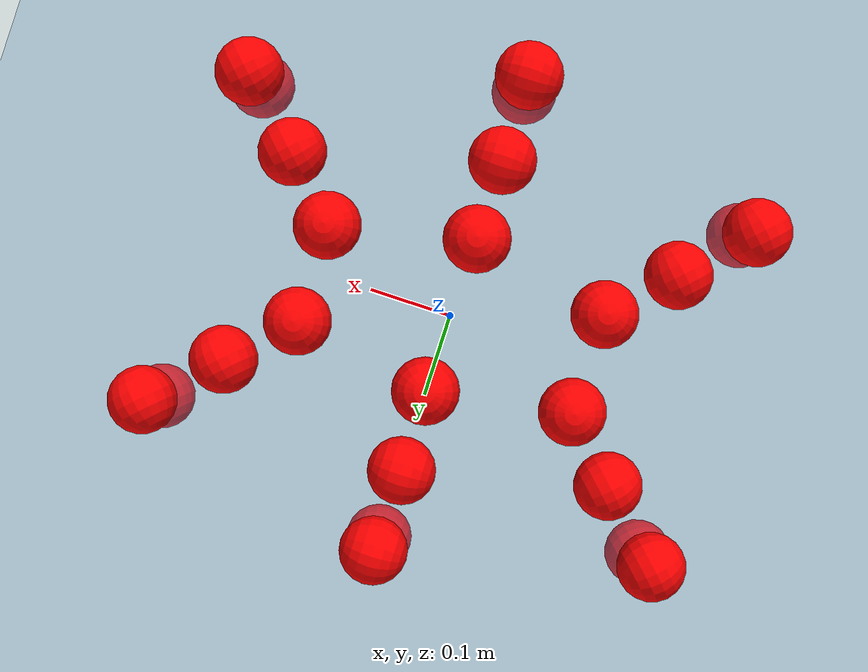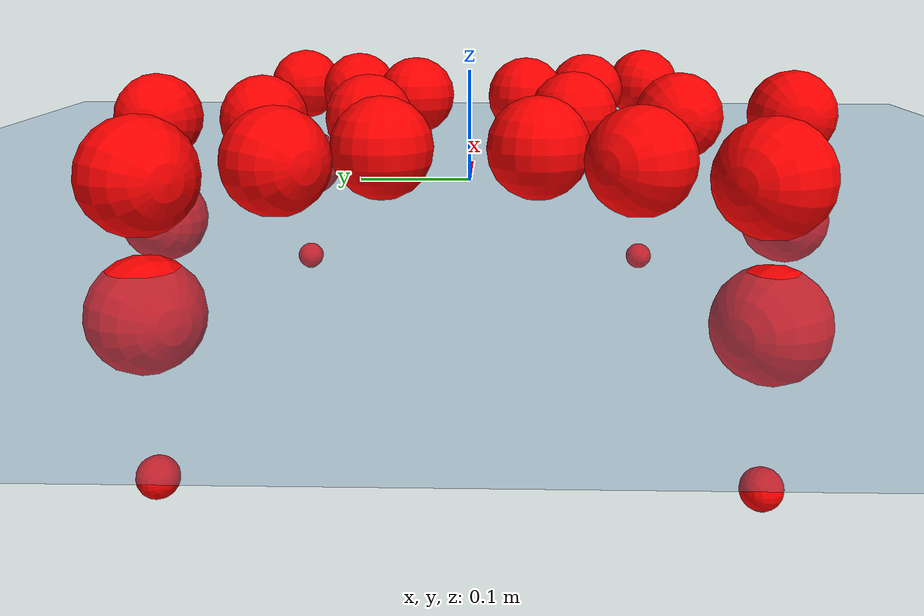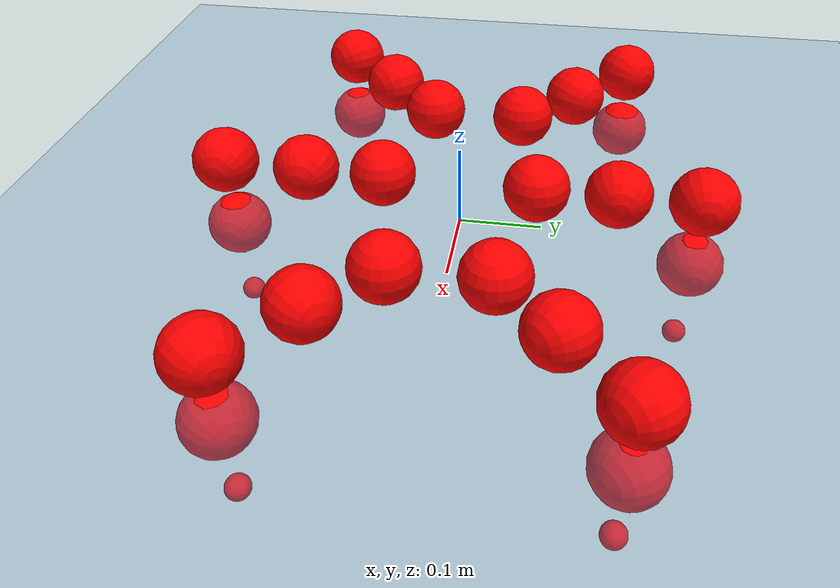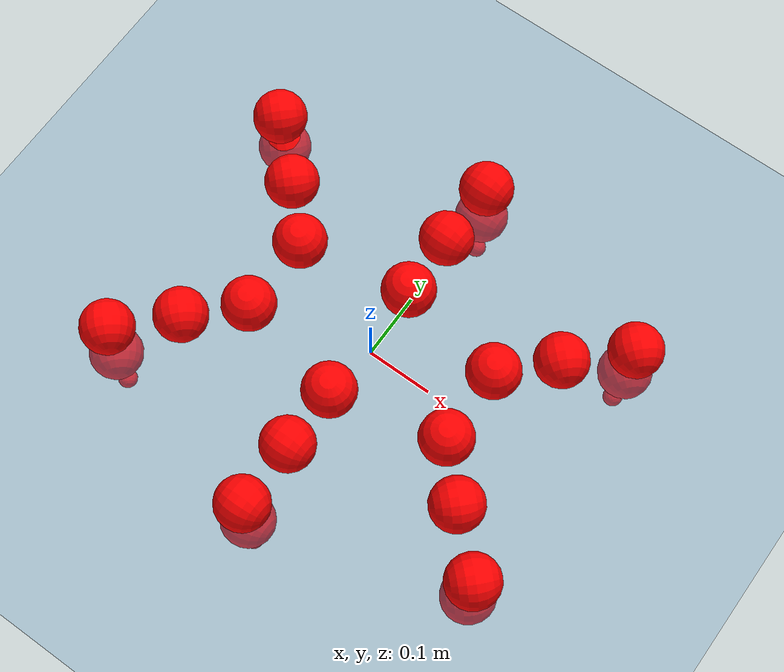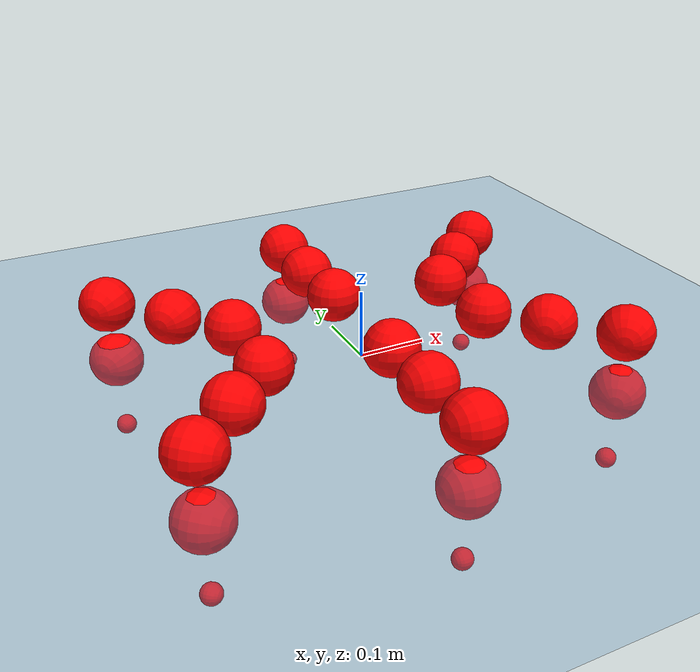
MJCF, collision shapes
<mujoco model="Golem">
  <compiler angle="radian" assetdir="assets" balanceinertia="true" inertiafromgeom="false"/>

  <option timestep="0.005" density="1.2" viscosity="2e-05"/>

  <size nkey="1"/>

  <visual>
    <quality shadowsize="8192"/>
    <map shadowclip="0.5"/>
  </visual>

  <default>
    <default class="/">
      <joint armature="0.01" damping="0.01" frictionloss="0.01"/>
      <geom contype="0" conaffinity="0" group="1" solref="-1000 -80"/>
      <site size="0.01 0.005 0.005" group="5"/>
      <general forcelimited="true" biastype="affine" gainprm="25" biasprm="0 -25 -0.5"/>
      <default class="visual">
        <geom type="mesh" group="2"/>
      </default>
      <default class="collision">
        <geom group="3"/>
      </default>
      <default class="foot">
        <geom size="0.01 0 0" condim="6" group="4" priority="1" solimp="0.015 1 0.01"/>
      </default>
      <default class="reward_collision_sphere">
        <geom group="5" rgba="1 0 0 1"/>
      </default>
    </default>
  </default>

  <asset>
    <texture type="skybox" colorspace="auto" name="//unnamed_texture_0" builtin="gradient" rgb1="0.95 0.95 0.95" rgb2="0.95 0.95 0.95" width="100" height="600"/>
    <texture type="2d" colorspace="auto" name="texplane" builtin="checker" rgb1="0.345 0.575 0.748" rgb2="0.345 0.575 0.748" markrgb="1 1 1" width="512" height="512"/>
    <material name="MatPlane" class="/" texture="texplane" texuniform="true" texrepeat="2 2" specular="0.9"/>
    <mesh name="body" class="/" file="body.stl" scale="0.001 0.001 0.001"/>
    <mesh name="coxa" class="/" file="coxa.stl" scale="0.001 0.001 0.001"/>
    <mesh name="femur" class="/" file="femur.stl" scale="0.001 0.001 0.001"/>
    <mesh name="tibia" class="/" file="tibia.stl" scale="0.001 0.001 0.001"/>
    <mesh name="tarsus" class="/" file="tarsus.stl" scale="0.001 0.001 0.001"/>
  </asset>

  <worldbody>
    <geom name="floor" class="/" size="100 100 0.125" type="plane" group="0" material="MatPlane"/>
    <light name="toplight_shadow" class="/" pos="0 0 5" dir="0.0990148 0.0990148 -0.990148" type="directional" ambient="0.04 0.04 0.04" diffuse="0.55 0.55 0.55" specular="0.12 0.12 0.12"/>
    <light name="toplight_fill" class="/" pos="0 0 5" dir="0.0990148 0.0990148 -0.990148" type="directional" castshadow="false" ambient="0.04 0.04 0.04" diffuse="0.3 0.3 0.3" specular="0.08 0.08 0.08"/>
    <body name="trunk" pos="-0.00149545 0.0017391 -0.00238485" quat="0.999999 -0.000739517 0.000883317 0.000326545">
      <inertial pos="0.0010844 0.00213693 -0.00662184" quat="0.999931 0.00670576 -0.00834773 0.00489914" mass="3.463" diaginertia="0.0135317 0.00749535 0.00844197"/>
      <joint name="//unnamed_joint_0" type="free"/>
      <geom name="//unnamed_geom_1" class="/" pos="0 0 0.0620001" quat="1 0 0 0" type="mesh" rgba="0.9 0.9 0.9 1" mesh="body"/>
      <site name="imu" class="/" pos="0.140242 0.00690369 0.102115" size="0.00995613"/>
      <camera name="track" class="/" pos="0 -1.8936 0" quat="0.707107 0.707107 0 0" mode="trackcom"/>
      <camera name="ego_camera" class="/" pos="0.139267 0 0.0968752" quat="-0.5 -0.5 0.5 0.5"/>
      <body name="coxa_RR" pos="-0.190157 -0.0810395 0.0589358" quat="0.38247 -6.22933e-05 0.00015156 -0.923968">
        <inertial pos="1.92342e-05 -0.00210726 0.000500625" quat="0.999993 -0.00190838 -0.00282585 -0.00156041" mass="0.19021" diaginertia="0.0137853 0.00716822 0.00857418"/>
        <joint name="coxa_joint_RR" class="/" pos="0 0 0" axis="0.0118523 -0.0081584 -0.999896" range="-3.17384 3.13529" armature="0.010828" damping="0" frictionloss="0.0100723"/>
        <geom name="//unnamed_geom_2" class="/" type="mesh" rgba="0.2 0.2 0.2 1" mesh="coxa"/>
        <geom name="//unnamed_geom_3" class="reward_collision_sphere" size="0.0398245" pos="-0.0321386 0 0"/>
        <body name="femur_RR" pos="0.0636871 0.0018135 0.00119526" quat="0.500346 -0.500552 0.499529 0.499572">
          <inertial pos="0.00245161 -0.00102482 -0.00209055" quat="0.999991 -0.00077866 0.00384205 -0.00188109" mass="0.192935" diaginertia="0.0139211 0.00752953 0.00880092"/>
          <joint name="femur_joint_RR" class="/" pos="0 0 0" axis="0.00182226 -0.000515756 -0.999998" range="-3.14334 3.19285" armature="0.00987078" damping="0" frictionloss="0.0112743"/>
          <geom name="//unnamed_geom_4" class="/" type="mesh" rgba="0.9 0.9 0.9 1" mesh="femur"/>
          <geom name="//unnamed_geom_5" class="reward_collision_sphere" size="0.0398245"/>
          <body name="tibia_RR" pos="-0.00122134 -0.102941 0.00264991" quat="-3.41365e-05 1 -5.73491e-05 8.66944e-05">
            <inertial pos="0.000105122 0.00155711 -0.000325262" quat="0.999966 -0.00564144 -0.00597146 1.35996e-05" mass="0.19762" diaginertia="0.0142466 0.00776185 0.00885398"/>
            <joint name="tibia_joint_RR" class="/" pos="0 0 0" axis="0.006313 0.00621783 0.999961" range="-3.10667 3.09084" armature="0.0105206" damping="0.0190657" frictionloss="0.00859513"/>
            <geom name="//unnamed_geom_6" class="/" type="mesh" rgba="0.2 0.2 0.2 1" mesh="tibia"/>
            <geom name="//unnamed_geom_7" class="reward_collision_sphere" size="0.0398245"/>
            <body name="tarsus_RR" pos="0.0965057 0.00200488 -0.00234647" quat="0.999999 -0.00101869 -0.000239049 0.000307932">
              <inertial pos="0.0636516 0.00119778 -0.00158656" quat="0.498046 0.501043 0.501563 0.49934" mass="0.193703" diaginertia="0.0134005 0.00758098 0.00835532"/>
              <joint name="tarsus_joint_RR" class="/" pos="0 0 0" axis="3.68721e-05 -0.00145395 0.999999" range="-3.1726 3.10655" armature="0.00857421" damping="0.00850378" frictionloss="0.0103135"/>
              <geom name="//unnamed_geom_8" class="/" type="mesh" rgba="0.9 0.9 0.9 1" mesh="tarsus"/>
              <geom name="foot_1" class="foot" size="0.0108606" pos="0.119984 0 0" quat="0 -0.707107 0 0.707107"/>
              <geom name="//unnamed_geom_10" class="reward_collision_sphere" size="0.0398245"/>
              <geom name="//unnamed_geom_11" class="reward_collision_sphere" size="0.0149342" pos="0.115163 0 0"/>
              <site name="foot_1" class="foot" pos="0.119984 0 0" quat="0 -0.707107 0 0.707107" size="0.00995613"/>
            </body>
          </body>
        </body>
      </body>
      <body name="coxa_RM" pos="-0.000426131 -0.127478 0.062133" quat="0.707934 -0.000719561 -0.000220353 -0.706278">
        <inertial pos="0.00151907 -0.000915401 5.85001e-05" quat="1 0.000305512 0.000280609 0.000101382" mass="0.189992" diaginertia="0.0140462 0.00760181 0.00849307"/>
        <joint name="coxa_joint_RM" class="/" pos="0 0 0" axis="-0.00611395 0.00326324 -0.999976" range="-3.13876 3.15124" armature="0.0105772" damping="0.00157808" frictionloss="0.0113168"/>
        <geom name="//unnamed_geom_12" class="/" type="mesh" rgba="0.2 0.2 0.2 1" mesh="coxa"/>
        <geom name="//unnamed_geom_13" class="reward_collision_sphere" size="0.0398245" pos="-0.0321386 0 0"/>
        <body name="femur_RM" pos="0.0629184 -2.97205e-05 -0.000910678" quat="0.50035 -0.49993 0.499502 0.500217">
          <inertial pos="-0.00146783 -0.00218543 -0.000885769" quat="0.999908 -0.0110718 0.00724049 0.00305467" mass="0.199994" diaginertia="0.0143441 0.00768265 0.00876549"/>
          <joint name="femur_joint_RM" class="/" pos="0 0 0" axis="0.000424084 -0.00587929 -0.999983" stiffness="0.00620416" range="-3.13552 3.1562" armature="0.0111906" damping="0.0171526" frictionloss="0.00879367"/>
          <geom name="//unnamed_geom_14" class="/" type="mesh" rgba="0.9 0.9 0.9 1" mesh="femur"/>
          <geom name="//unnamed_geom_15" class="reward_collision_sphere" size="0.0398245"/>
          <body name="tibia_RM" pos="-0.00188287 -0.1017 0.000530145" quat="0.000726364 0.999999 0.000418076 0.00056895">
            <inertial pos="-0.00194015 -0.00252054 0.000203566" quat="0.999946 -0.00869076 0.00561701 -0.000112563" mass="0.19665" diaginertia="0.0137396 0.00733922 0.00834172"/>
            <joint name="tibia_joint_RM" class="/" pos="0 0 0" axis="0.00241361 -0.00528203 0.999983" range="-3.1529 3.17632" armature="0.0086309" damping="0" frictionloss="0.010166"/>
            <geom name="//unnamed_geom_16" class="/" type="mesh" rgba="0.2 0.2 0.2 1" mesh="tibia"/>
            <geom name="//unnamed_geom_17" class="reward_collision_sphere" size="0.0398245"/>
            <body name="tarsus_RM" pos="0.096589 -0.00147058 5.9674e-05" quat="1 0.000127155 -0.000272327 -0.00018675">
              <inertial pos="0.0641576 0.000177502 0.0029371" quat="0.500239 0.501989 0.497402 0.500359" mass="0.19093" diaginertia="0.0140803 0.00745407 0.00827632"/>
              <joint name="tarsus_joint_RM" class="/" pos="0 0 0" axis="0.0111069 -0.0057032 0.999922" range="-3.15723 3.13173" armature="0.0102857" damping="0.00681918" frictionloss="0.00952165"/>
              <geom name="//unnamed_geom_18" class="/" type="mesh" rgba="0.9 0.9 0.9 1" mesh="tarsus"/>
              <geom name="foot_2" class="foot" size="0.0106584" pos="0.119984 0 0" quat="0 -0.707107 0 0.707107"/>
              <geom name="//unnamed_geom_20" class="reward_collision_sphere" size="0.0398245"/>
              <geom name="//unnamed_geom_21" class="reward_collision_sphere" size="0.0149342" pos="0.115163 0 0"/>
              <site name="foot_2" class="foot" pos="0.119984 0 0" quat="0 -0.707107 0 0.707107" size="0.00995613"/>
            </body>
          </body>
        </body>
      </body>
      <body name="coxa_RF" pos="0.191196 -0.0796172 0.0617476" quat="0.923704 -0.00104576 -0.00101314 -0.383103">
        <inertial pos="-0.00210808 0.000982837 0.000894115" quat="0.999991 -0.000247718 -0.00417555 0.00055784" mass="0.192732" diaginertia="0.0133976 0.00750049 0.00840181"/>
        <joint name="coxa_joint_RF" class="/" pos="0 0 0" axis="3.21853e-05 1.03442e-06 -1" range="-3.16539 3.18665" armature="0.00985284" damping="0.000803931" frictionloss="0.0103925"/>
        <geom name="//unnamed_geom_22" class="/" type="mesh" rgba="0.2 0.2 0.2 1" mesh="coxa"/>
        <geom name="//unnamed_geom_23" class="reward_collision_sphere" size="0.0398245" pos="-0.0321386 0 0"/>
        <body name="femur_RF" pos="0.0615282 -0.00254096 -0.00123592" quat="0.499985 -0.499992 0.499966 0.500057">
          <inertial pos="-0.00117468 -0.000991445 -0.000464662" quat="0.999916 0.00942288 -0.00786896 -0.00408116" mass="0.194816" diaginertia="0.0133522 0.00735552 0.00806546"/>
          <joint name="femur_joint_RF" class="/" pos="0 0 0" axis="0.00216796 -0.00233233 -0.999995" stiffness="0.00524809" range="-3.1423 3.08811" armature="0.0102446" damping="0" frictionloss="0.00869045"/>
          <geom name="//unnamed_geom_24" class="/" type="mesh" rgba="0.9 0.9 0.9 1" mesh="femur"/>
          <geom name="//unnamed_geom_25" class="reward_collision_sphere" size="0.0398245"/>
          <body name="tibia_RF" pos="0.000873303 -0.104916 0.00235068" quat="-1.04465e-05 1 0.000388073 0.000250455">
            <inertial pos="8.40395e-05 0.000247896 0.00210325" quat="1 -0.00015816 0.000324122 -0.000335413" mass="0.191822" diaginertia="0.0132395 0.00742225 0.0083203"/>
            <joint name="tibia_joint_RF" class="/" pos="0 0 0" axis="-0.0113557 0.00151635 0.999934" range="-3.12422 3.18474" armature="0.00961008" damping="0.00587727" frictionloss="0.0110717"/>
            <geom name="//unnamed_geom_26" class="/" type="mesh" rgba="0.2 0.2 0.2 1" mesh="tibia"/>
            <geom name="//unnamed_geom_27" class="reward_collision_sphere" size="0.0398245"/>
            <body name="tarsus_RF" pos="0.0940571 0.000798829 0.000942976" quat="1 -0.000353468 0.000171413 -0.000263564">
              <inertial pos="0.061999 0.00206242 0.00243191" quat="0.499893 0.496798 0.502441 0.500851" mass="0.203789" diaginertia="0.0139962 0.00785606 0.00894907"/>
              <joint name="tarsus_joint_RF" class="/" pos="0 0 0" axis="-0.00151777 0.0106041 0.999943" stiffness="0.0283671" range="-3.12599 3.13261" armature="0.0110053" damping="0.0160657" frictionloss="0.0108474"/>
              <geom name="//unnamed_geom_28" class="/" type="mesh" rgba="0.9 0.9 0.9 1" mesh="tarsus"/>
              <geom name="foot_3" class="foot" size="0.0102436" pos="0.119984 0 0" quat="0 -0.707107 0 0.707107"/>
              <geom name="//unnamed_geom_30" class="reward_collision_sphere" size="0.0398245"/>
              <geom name="//unnamed_geom_31" class="reward_collision_sphere" size="0.0149342" pos="0.115163 0 0"/>
              <site name="foot_3" class="foot" pos="0.119984 0 0" quat="0 -0.707107 0 0.707107" size="0.00995613"/>
            </body>
          </body>
        </body>
      </body>
      <body name="coxa_LR" pos="-0.189576 0.0831532 0.0585738" quat="0.382679 0.00017337 0.00092078 0.923881">
        <inertial pos="-0.00119872 -0.00087933 0.0012965" quat="0.999989 0.0013585 0.00163535 0.00429854" mass="0.198336" diaginertia="0.0134799 0.00738009 0.0086396"/>
        <joint name="coxa_joint_LR" class="/" pos="0 0 0" axis="-0.00787243 0.00229382 -0.999966" stiffness="0.0100849" range="-3.18356 3.1913" armature="0.0112579" damping="0" frictionloss="0.00980103"/>
        <geom name="//unnamed_geom_32" class="/" type="mesh" rgba="0.2 0.2 0.2 1" mesh="coxa"/>
        <geom name="//unnamed_geom_33" class="reward_collision_sphere" size="0.0398245" pos="-0.0321386 0 0"/>
        <body name="femur_LR" pos="0.0620157 -0.00210498 0.000601362" quat="0.499565 -0.498936 0.500546 0.50095">
          <inertial pos="0.000615494 0.00275001 0.00116729" quat="0.999999 0.000853952 -0.000115938 0.000576992" mass="0.198608" diaginertia="0.0142904 0.00770746 0.00869427"/>
          <joint name="femur_joint_LR" class="/" pos="0 0 0" axis="0.0012271 -0.000237301 0.999999" range="-3.1501 3.13691" armature="0.0095821" damping="0.0286127" frictionloss="0.0100714"/>
          <geom name="//unnamed_geom_34" class="/" type="mesh" rgba="0.9 0.9 0.9 1" mesh="femur"/>
          <geom name="//unnamed_geom_35" class="reward_collision_sphere" size="0.0398245"/>
          <body name="tibia_LR" pos="-0.00383008 -0.104861 0.00209732" quat="-0.0010735 0.999999 0.000416424 0.000144614">
            <inertial pos="0.00228555 -0.000791063 -0.00174977" quat="1 0.000187538 0.000461023 0.000229198" mass="0.205594" diaginertia="0.0143999 0.00761351 0.00875026"/>
            <joint name="tibia_joint_LR" class="/" pos="0 0 0" axis="-0.0159278 -0.000784186 -0.999873" stiffness="0.00400578" range="-3.09406 3.12531" armature="0.0113214" damping="0" frictionloss="0.009849"/>
            <geom name="//unnamed_geom_36" class="/" type="mesh" rgba="0.2 0.2 0.2 1" mesh="tibia"/>
            <geom name="//unnamed_geom_37" class="reward_collision_sphere" size="0.0398245"/>
            <body name="tarsus_LR" pos="0.0926231 -0.000122334 0.00246235" quat="1 6.12997e-05 0.000588581 0.000189888">
              <inertial pos="0.060124 0.00160812 0.000606433" quat="0.494127 0.509424 0.503318 0.492947" mass="0.193732" diaginertia="0.0144528 0.00731263 0.00849939"/>
              <joint name="tarsus_joint_LR" class="/" pos="0 0 0" axis="2.06009e-05 0.00353566 -0.999994" stiffness="0.00172298" range="-3.19402 3.09648" armature="0.00927957" damping="0.0100593" frictionloss="0.00892273"/>
              <geom name="//unnamed_geom_38" class="/" type="mesh" rgba="0.9 0.9 0.9 1" mesh="tarsus"/>
              <geom name="foot_4" class="foot" size="0.00904016" pos="0.119984 0 0" quat="0.707107 0 -0.707107 0"/>
              <geom name="//unnamed_geom_40" class="reward_collision_sphere" size="0.0398245"/>
              <geom name="//unnamed_geom_41" class="reward_collision_sphere" size="0.0149342" pos="0.115163 0 0"/>
              <site name="foot_4" class="foot" pos="0.119984 0 0" quat="0.707107 0 -0.707107 0" size="0.00995613"/>
            </body>
          </body>
        </body>
      </body>
      <body name="coxa_LM" pos="0.00176484 0.121855 0.0594876" quat="0.707086 8.53128e-05 9.34975e-05 0.707128">
        <inertial pos="-0.00227573 -0.00129098 0.00296068" quat="1 -2.36523e-05 0.000629961 0.000701782" mass="0.191334" diaginertia="0.0142247 0.0073886 0.00833649"/>
        <joint name="coxa_joint_LM" class="/" pos="0 0 0" axis="0.000846236 0.0118645 -0.999929" range="-3.15731 3.18401" armature="0.0112108" damping="0.00408874" frictionloss="0.0109512"/>
        <geom name="//unnamed_geom_42" class="/" type="mesh" rgba="0.2 0.2 0.2 1" mesh="coxa"/>
        <geom name="//unnamed_geom_43" class="reward_collision_sphere" size="0.0398245" pos="-0.0321386 0 0"/>
        <body name="femur_LM" pos="0.0635733 0.0020483 -0.000522513" quat="0.500149 -0.500076 0.499804 0.49997">
          <inertial pos="0.0013446 -0.00167505 -0.00254065" quat="0.999988 -0.00487413 -0.000538909 0.000291286" mass="0.206294" diaginertia="0.0143865 0.00754539 0.0083433"/>
          <joint name="femur_joint_LM" class="/" pos="0 0 0" axis="9.90144e-07 0.000543133 1" stiffness="0.00685757" range="-3.08818 3.14425" armature="0.00921119" damping="0.0153883" frictionloss="0.00921591"/>
          <geom name="//unnamed_geom_44" class="/" type="mesh" rgba="0.9 0.9 0.9 1" mesh="femur"/>
          <geom name="//unnamed_geom_45" class="reward_collision_sphere" size="0.0398245"/>
          <body name="tibia_LM" pos="-0.00110553 -0.0971546 -0.00237829" quat="-0.000161427 1 2.37561e-05 4.96491e-06">
            <inertial pos="0.00194255 -0.00102194 4.44464e-06" quat="0.999997 0.0020299 0.00122081 0.00105917" mass="0.194687" diaginertia="0.0139658 0.00729392 0.00812015"/>
            <joint name="tibia_joint_LM" class="/" pos="0 0 0" axis="0.00678165 0.010396 -0.999923" stiffness="0.00975991" range="-3.13122 3.14241" armature="0.0102024" damping="0.0104487" frictionloss="0.00967994"/>
            <geom name="//unnamed_geom_46" class="/" type="mesh" rgba="0.2 0.2 0.2 1" mesh="tibia"/>
            <geom name="//unnamed_geom_47" class="reward_collision_sphere" size="0.0398245"/>
            <body name="tarsus_LM" pos="0.0944998 0.000340791 -0.0011422" quat="1 3.23222e-05 6.66095e-05 1.98887e-05">
              <inertial pos="0.0652976 -0.000243179 0.00237449" quat="0.500241 0.502044 0.497702 0.500003" mass="0.19545" diaginertia="0.013597 0.00729574 0.00845271"/>
              <joint name="tarsus_joint_LM" class="/" pos="0 0 0" axis="-0.00614685 0.0085118 -0.999945" range="-3.13021 3.13519" armature="0.00988964" damping="0.0112026" frictionloss="0.00972787"/>
              <geom name="//unnamed_geom_48" class="/" type="mesh" rgba="0.9 0.9 0.9 1" mesh="tarsus"/>
              <geom name="foot_5" class="foot" size="0.010021" pos="0.119984 0 0" quat="0.707107 0 -0.707107 0"/>
              <geom name="//unnamed_geom_50" class="reward_collision_sphere" size="0.0398245"/>
              <geom name="//unnamed_geom_51" class="reward_collision_sphere" size="0.0149342" pos="0.115163 0 0"/>
              <site name="foot_5" class="foot" pos="0.119984 0 0" quat="0.707107 0 -0.707107 0" size="0.00995613"/>
            </body>
          </body>
        </body>
      </body>
      <body name="coxa_LF" pos="0.189612 0.0814128 0.0620904" quat="0.923925 -5.26087e-05 -0.00100345 0.382573">
        <inertial pos="-0.000772915 0.000422449 2.62833e-05" quat="0.999986 -0.000381488 0.000234089 -0.00536215" mass="0.194084" diaginertia="0.0143158 0.00759056 0.00840872"/>
        <joint name="coxa_joint_LF" class="/" pos="0 0 0" axis="-0.000809328 -0.00292201 -0.999995" stiffness="0.00299043" range="-3.16994 3.13412" armature="0.009645" damping="0.00355824" frictionloss="0.00867805"/>
        <geom name="//unnamed_geom_52" class="/" type="mesh" rgba="0.2 0.2 0.2 1" mesh="coxa"/>
        <geom name="//unnamed_geom_53" class="reward_collision_sphere" size="0.0398245" pos="-0.0321386 0 0"/>
        <body name="femur_LF" pos="0.063515 0.000768282 -0.000469462" quat="0.500385 -0.499365 0.500149 0.5001">
          <inertial pos="0.00225623 0.00125626 -0.00267795" quat="1 -9.21396e-05 0.000242331 0.000293349" mass="0.189761" diaginertia="0.0138879 0.0076412 0.00842531"/>
          <joint name="femur_joint_LF" class="/" pos="0 0 0" axis="0.000487396 0.00113958 0.999999" stiffness="0.0069048" range="-3.15234 3.14498" armature="0.0109681" damping="0.0185419" frictionloss="0.0111111"/>
          <geom name="//unnamed_geom_54" class="/" type="mesh" rgba="0.9 0.9 0.9 1" mesh="femur"/>
          <geom name="//unnamed_geom_55" class="reward_collision_sphere" size="0.0398245"/>
          <body name="tibia_LF" pos="0.00189501 -0.104818 -0.00111949" quat="-0.000412303 0.999999 -0.000397807 0.000831614">
            <inertial pos="-0.00251627 0.00229374 -0.000542519" quat="0.999999 -0.00111083 0.000467681 0.000147093" mass="0.211234" diaginertia="0.0149237 0.00788656 0.00912835"/>
            <joint name="tibia_joint_LF" class="/" pos="0 0 0" axis="9.02446e-05 0.000206116 -1" range="-3.1217 3.15733" armature="0.010765" damping="0" frictionloss="0.009503"/>
            <geom name="//unnamed_geom_56" class="/" type="mesh" rgba="0.2 0.2 0.2 1" mesh="tibia"/>
            <geom name="//unnamed_geom_57" class="reward_collision_sphere" size="0.0398245"/>
            <body name="tarsus_LF" pos="0.0945084 -0.000597285 -0.00177544" quat="1 -2.37183e-05 0.000396542 -0.000685748">
              <inertial pos="0.0663688 0.00250355 -0.00162864" quat="0.495699 0.507594 0.498415 0.498211" mass="0.200677" diaginertia="0.0150011 0.00776548 0.00906466"/>
              <joint name="tarsus_joint_LF" class="/" pos="0 0 0" axis="0.00122421 0.0147479 -0.99989" stiffness="0.000243328" range="-3.09988 3.1309" armature="0.0103649" damping="0.0175547" frictionloss="0.0109044"/>
              <geom name="//unnamed_geom_58" class="/" type="mesh" rgba="0.9 0.9 0.9 1" mesh="tarsus"/>
              <geom name="foot_6" class="foot" size="0.0109726" pos="0.119984 0 0" quat="0.707107 0 -0.707107 0"/>
              <geom name="//unnamed_geom_60" class="reward_collision_sphere" size="0.0398245"/>
              <geom name="//unnamed_geom_61" class="reward_collision_sphere" size="0.0149342" pos="0.115163 0 0"/>
              <site name="foot_6" class="foot" pos="0.119984 0 0" quat="0.707107 0 -0.707107 0" size="0.00995613"/>
            </body>
          </body>
        </body>
      </body>
    </body>
  </worldbody>

  <contact>
    <pair class="/" geom1="floor" geom2="foot_1" name="//unnamed_contact_0"/>
    <pair class="/" geom1="floor" geom2="foot_2" name="//unnamed_contact_1"/>
    <pair class="/" geom1="floor" geom2="foot_3" name="//unnamed_contact_2"/>
    <pair class="/" geom1="floor" geom2="foot_4" name="//unnamed_contact_3"/>
    <pair class="/" geom1="floor" geom2="foot_5" name="//unnamed_contact_4"/>
    <pair class="/" geom1="floor" geom2="foot_6" name="//unnamed_contact_5"/>
  </contact>

  <actuator>
    <general name="coxa_joint_RR" class="/" joint="coxa_joint_RR" forcerange="-6.52658 6.52658" gainprm="24.3469" biasprm="0 -24.3469 -0.468542"/>
    <general name="femur_joint_RR" class="/" joint="femur_joint_RR" forcerange="-7.14995 7.14995" gainprm="24.3469" biasprm="0 -24.3469 -0.468542"/>
    <general name="tibia_joint_RR" class="/" joint="tibia_joint_RR" forcerange="-6.56481 6.56481" gainprm="24.3469" biasprm="0 -24.3469 -0.468542"/>
    <general name="tarsus_joint_RR" class="/" joint="tarsus_joint_RR" forcerange="-7.20215 7.20215" gainprm="24.3469" biasprm="0 -24.3469 -0.468542"/>
    <general name="coxa_joint_RM" class="/" joint="coxa_joint_RM" forcerange="-7.42427 7.42427" gainprm="24.3469" biasprm="0 -24.3469 -0.468542"/>
    <general name="femur_joint_RM" class="/" joint="femur_joint_RM" forcerange="-7.30349 7.30349" gainprm="24.3469" biasprm="0 -24.3469 -0.468542"/>
    <general name="tibia_joint_RM" class="/" joint="tibia_joint_RM" forcerange="-7.09888 7.09888" gainprm="24.3469" biasprm="0 -24.3469 -0.468542"/>
    <general name="tarsus_joint_RM" class="/" joint="tarsus_joint_RM" forcerange="-6.84684 6.84684" gainprm="24.3469" biasprm="0 -24.3469 -0.468542"/>
    <general name="coxa_joint_RF" class="/" joint="coxa_joint_RF" forcerange="-7.90615 7.90615" gainprm="24.3469" biasprm="0 -24.3469 -0.468542"/>
    <general name="femur_joint_RF" class="/" joint="femur_joint_RF" forcerange="-7.56475 7.56475" gainprm="24.3469" biasprm="0 -24.3469 -0.468542"/>
    <general name="tibia_joint_RF" class="/" joint="tibia_joint_RF" forcerange="-7.756 7.756" gainprm="24.3469" biasprm="0 -24.3469 -0.468542"/>
    <general name="tarsus_joint_RF" class="/" joint="tarsus_joint_RF" forcerange="-6.86631 6.86631" gainprm="24.3469" biasprm="0 -24.3469 -0.468542"/>
    <general name="coxa_joint_LR" class="/" joint="coxa_joint_LR" forcerange="-6.70154 6.70154" gainprm="24.3469" biasprm="0 -24.3469 -0.468542"/>
    <general name="femur_joint_LR" class="/" joint="femur_joint_LR" forcerange="-7.06963 7.06963" gainprm="24.3469" biasprm="0 -24.3469 -0.468542"/>
    <general name="tibia_joint_LR" class="/" joint="tibia_joint_LR" forcerange="-7.29628 7.29628" gainprm="24.3469" biasprm="0 -24.3469 -0.468542"/>
    <general name="tarsus_joint_LR" class="/" joint="tarsus_joint_LR" forcerange="-6.71103 6.71103" gainprm="24.3469" biasprm="0 -24.3469 -0.468542"/>
    <general name="coxa_joint_LM" class="/" joint="coxa_joint_LM" forcerange="-6.80629 6.80629" gainprm="24.3469" biasprm="0 -24.3469 -0.468542"/>
    <general name="femur_joint_LM" class="/" joint="femur_joint_LM" forcerange="-6.77757 6.77757" gainprm="24.3469" biasprm="0 -24.3469 -0.468542"/>
    <general name="tibia_joint_LM" class="/" joint="tibia_joint_LM" forcerange="-6.52463 6.52463" gainprm="24.3469" biasprm="0 -24.3469 -0.468542"/>
    <general name="tarsus_joint_LM" class="/" joint="tarsus_joint_LM" forcerange="-6.72675 6.72675" gainprm="24.3469" biasprm="0 -24.3469 -0.468542"/>
    <general name="coxa_joint_LF" class="/" joint="coxa_joint_LF" forcerange="-7.30061 7.30061" gainprm="24.3469" biasprm="0 -24.3469 -0.468542"/>
    <general name="femur_joint_LF" class="/" joint="femur_joint_LF" forcerange="-6.70368 6.70368" gainprm="24.3469" biasprm="0 -24.3469 -0.468542"/>
    <general name="tibia_joint_LF" class="/" joint="tibia_joint_LF" forcerange="-7.84032 7.84032" gainprm="24.3469" biasprm="0 -24.3469 -0.468542"/>
    <general name="tarsus_joint_LF" class="/" joint="tarsus_joint_LF" forcerange="-6.52297 6.52297" gainprm="24.3469" biasprm="0 -24.3469 -0.468542"/>
  </actuator>

  <sensor>
    <gyro site="imu" name="imu_angular_velocity"/>
    <velocimeter site="imu" name="imu_linear_velocity"/>
    <framelinvel objtype="site" objname="foot_1" name="foot_1_global_linear_velocity"/>
    <framelinvel objtype="site" objname="foot_2" name="foot_2_global_linear_velocity"/>
    <framelinvel objtype="site" objname="foot_3" name="foot_3_global_linear_velocity"/>
    <framelinvel objtype="site" objname="foot_4" name="foot_4_global_linear_velocity"/>
    <framelinvel objtype="site" objname="foot_5" name="foot_5_global_linear_velocity"/>
    <framelinvel objtype="site" objname="foot_6" name="foot_6_global_linear_velocity"/>
  </sensor>

  <keyframe>
    <key name="home" qpos="0 0 0.1457 1 0 0 0 0 0 0 0 0 0 0 0 0 0 0 0 0 0 0 0 0 0 0 0 0 0 0 0"/>
  </keyframe>
</mujoco>
